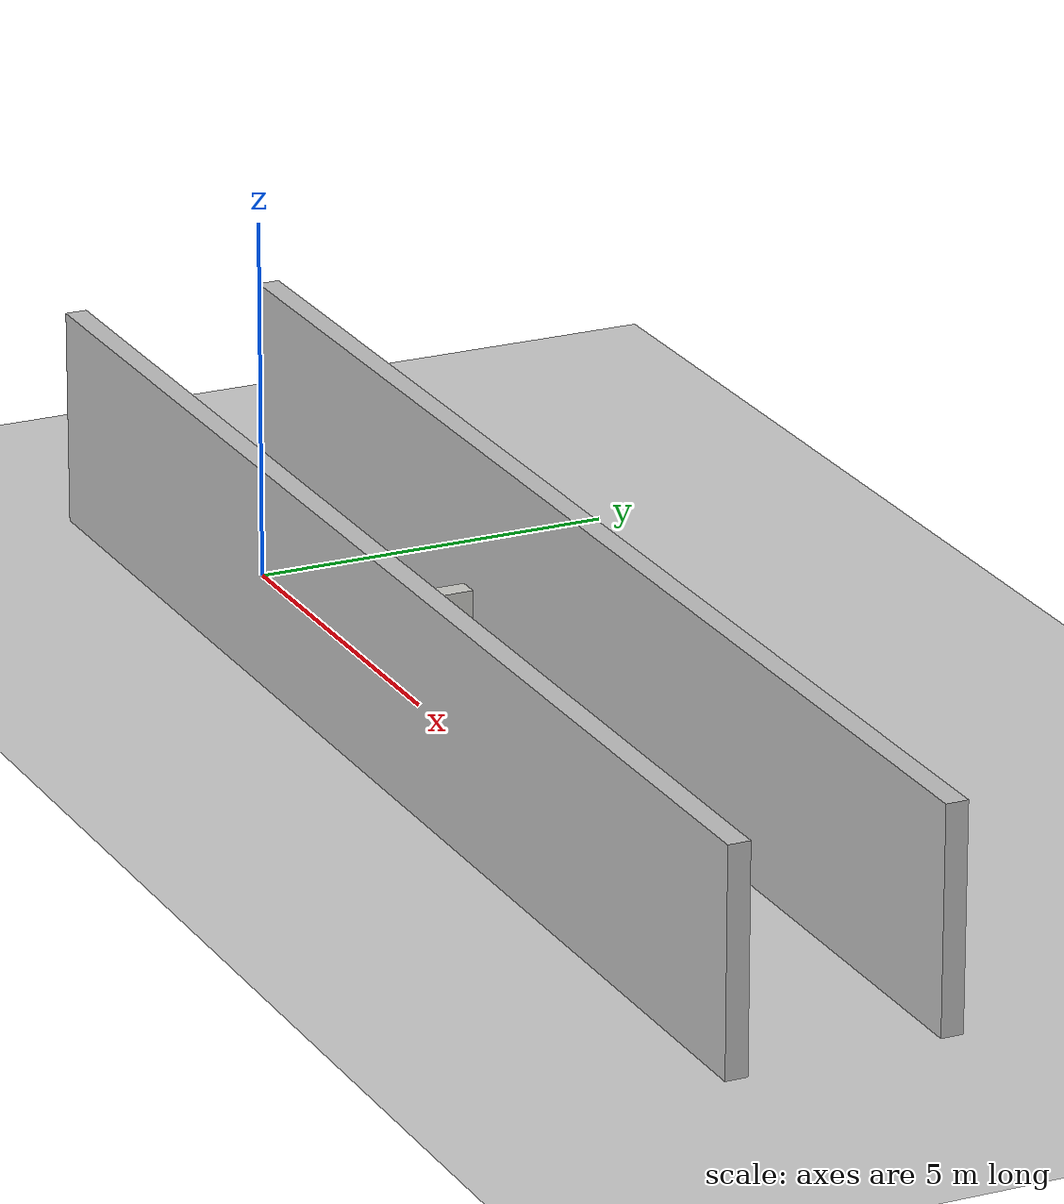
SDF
<?xml version="1.0" ?>
<sdf version="1.5">
    <world name="default">

        <physics type="ode">
            <max_step_size>0.0005</max_step_size>
            <real_time_factor>1</real_time_factor>
            <real_time_update_rate>2000</real_time_update_rate>
            <gravity>0 0 -9.81</gravity>
            <ode>
                <solver>
                    <type>quick</type>
                    <iters>50</iters>
                    <sor>1.3</sor>
                </solver>
                <constraints>
                    <cfm>0.0</cfm>
                    <erp>0.2</erp>
                    <contact_max_correcting_vel>10.0</contact_max_correcting_vel>
                    <contact_surface_layer>0.001</contact_surface_layer>
                </constraints>
            </ode>
        </physics>

        <scene>
            <sky>
                <clouds>
                    <speed>12</speed>
                </clouds>
            </sky>
        </scene>

        <include>
            <uri>model://sun</uri>
        </include>
        <include>
            <uri>model://ground_plane</uri>
        </include>

        <!-- Left wall: 20 m long, 0.3 m thick, 3 m tall; inner face at Y=-1.27 -->
        <model name="left_wall">
            <static>true</static>
            <link name="link">
                <pose>7 -1.42 1.5 0 0 0</pose>
                <collision name="collision">
                    <geometry>
                        <box><size>20 0.3 3.0</size></box>
                    </geometry>
                </collision>
                <visual name="visual">
                    <geometry>
                        <box><size>20 0.3 3.0</size></box>
                    </geometry>
                    <material>
                        <ambient>0.75 0.75 0.75 1</ambient>
                        <diffuse>0.75 0.75 0.75 1</diffuse>
                    </material>
                </visual>
            </link>
        </model>

        <!-- Right wall: 20 m long, 0.3 m thick, 3 m tall; inner face at Y=+1.27 -->
        <model name="right_wall">
            <static>true</static>
            <link name="link">
                <pose>7 1.42 1.5 0 0 0</pose>
                <collision name="collision">
                    <geometry>
                        <box><size>20 0.3 3.0</size></box>
                    </geometry>
                </collision>
                <visual name="visual">
                    <geometry>
                        <box><size>20 0.3 3.0</size></box>
                    </geometry>
                    <material>
                        <ambient>0.75 0.75 0.75 1</ambient>
                        <diffuse>0.75 0.75 0.75 1</diffuse>
                    </material>
                </visual>
            </link>
        </model>

        <model name="staircase">
            <static>true</static>
            <link name="link">
                <pose>0 0 0 0 0 0</pose>

                <!-- Step 0: x=3.14, z_center=0.09, height=0.18 -->
                <collision name="step_0">
                    <pose>3.14 -0.4318 0.09 0 0 0</pose>
                    <geometry><box><size>0.28 1.6764 0.18</size></box></geometry>
                </collision>
                <visual name="step_0">
                    <pose>3.14 -0.4318 0.09 0 0 0</pose>
                    <geometry><box><size>0.28 1.6764 0.18</size></box></geometry>
                    <material>
                        <script>
                            <uri>file://media/materials/scripts/gazebo.material</uri>
                            <name>Gazebo/CeilingTiled</name>
                        </script>
                        <ambient>1 1 1 1</ambient>
                    </material>
                </visual>

                <!-- Step 1: x=3.42, z_center=0.18, height=0.36 -->
                <collision name="step_1">
                    <pose>3.42 -0.4318 0.18 0 0 0</pose>
                    <geometry><box><size>0.28 1.6764 0.36</size></box></geometry>
                </collision>
                <visual name="step_1">
                    <pose>3.42 -0.4318 0.18 0 0 0</pose>
                    <geometry><box><size>0.28 1.6764 0.36</size></box></geometry>
                    <material>
                        <script>
                            <uri>file://media/materials/scripts/gazebo.material</uri>
                            <name>Gazebo/CeilingTiled</name>
                        </script>
                        <ambient>1 1 1 1</ambient>
                    </material>
                </visual>

                <!-- Step 2: x=3.70, z_center=0.27, height=0.54 -->
                <collision name="step_2">
                    <pose>3.70 -0.4318 0.27 0 0 0</pose>
                    <geometry><box><size>0.28 1.6764 0.54</size></box></geometry>
                </collision>
                <visual name="step_2">
                    <pose>3.70 -0.4318 0.27 0 0 0</pose>
                    <geometry><box><size>0.28 1.6764 0.54</size></box></geometry>
                    <material>
                        <script>
                            <uri>file://media/materials/scripts/gazebo.material</uri>
                            <name>Gazebo/CeilingTiled</name>
                        </script>
                        <ambient>1 1 1 1</ambient>
                    </material>
                </visual>

                <!-- Step 3: x=3.98, z_center=0.36, height=0.72 -->
                <collision name="step_3">
                    <pose>3.98 -0.4318 0.36 0 0 0</pose>
                    <geometry><box><size>0.28 1.6764 0.72</size></box></geometry>
                </collision>
                <visual name="step_3">
                    <pose>3.98 -0.4318 0.36 0 0 0</pose>
                    <geometry><box><size>0.28 1.6764 0.72</size></box></geometry>
                    <material>
                        <script>
                            <uri>file://media/materials/scripts/gazebo.material</uri>
                            <name>Gazebo/CeilingTiled</name>
                        </script>
                        <ambient>1 1 1 1</ambient>
                    </material>
                </visual>

                <!-- Step 4: x=4.26, z_center=0.45, height=0.90 -->
                <collision name="step_4">
                    <pose>4.26 -0.4318 0.45 0 0 0</pose>
                    <geometry><box><size>0.28 1.6764 0.90</size></box></geometry>
                </collision>
                <visual name="step_4">
                    <pose>4.26 -0.4318 0.45 0 0 0</pose>
                    <geometry><box><size>0.28 1.6764 0.90</size></box></geometry>
                    <material>
                        <script>
                            <uri>file://media/materials/scripts/gazebo.material</uri>
                            <name>Gazebo/CeilingTiled</name>
                        </script>
                        <ambient>1 1 1 1</ambient>
                    </material>
                </visual>

                <!-- Step 5: x=4.54, z_center=0.54, height=1.08 -->
                <collision name="step_5">
                    <pose>4.54 -0.4318 0.54 0 0 0</pose>
                    <geometry><box><size>0.28 1.6764 1.08</size></box></geometry>
                </collision>
                <visual name="step_5">
                    <pose>4.54 -0.4318 0.54 0 0 0</pose>
                    <geometry><box><size>0.28 1.6764 1.08</size></box></geometry>
                    <material>
                        <script>
                            <uri>file://media/materials/scripts/gazebo.material</uri>
                            <name>Gazebo/CeilingTiled</name>
                        </script>
                        <ambient>1 1 1 1</ambient>
                    </material>
                </visual>

                <!-- Step 6: x=4.82, z_center=0.63, height=1.26 -->
                <collision name="step_6">
                    <pose>4.82 -0.4318 0.63 0 0 0</pose>
                    <geometry><box><size>0.28 1.6764 1.26</size></box></geometry>
                </collision>
                <visual name="step_6">
                    <pose>4.82 -0.4318 0.63 0 0 0</pose>
                    <geometry><box><size>0.28 1.6764 1.26</size></box></geometry>
                    <material>
                        <script>
                            <uri>file://media/materials/scripts/gazebo.material</uri>
                            <name>Gazebo/CeilingTiled</name>
                        </script>
                        <ambient>1 1 1 1</ambient>
                    </material>
                </visual>

                <!-- Step 7: x=5.10, z_center=0.72, height=1.44 -->
                <collision name="step_7">
                    <pose>5.10 -0.4318 0.72 0 0 0</pose>
                    <geometry><box><size>0.28 1.6764 1.44</size></box></geometry>
                </collision>
                <visual name="step_7">
                    <pose>5.10 -0.4318 0.72 0 0 0</pose>
                    <geometry><box><size>0.28 1.6764 1.44</size></box></geometry>
                    <material>
                        <script>
                            <uri>file://media/materials/scripts/gazebo.material</uri>
                            <name>Gazebo/CeilingTiled</name>
                        </script>
                        <ambient>1 1 1 1</ambient>
                    </material>
                </visual>

                <!-- Step 8: x=5.38, z_center=0.81, height=1.62 -->
                <collision name="step_8">
                    <pose>5.38 -0.4318 0.81 0 0 0</pose>
                    <geometry><box><size>0.28 1.6764 1.62</size></box></geometry>
                </collision>
                <visual name="step_8">
                    <pose>5.38 -0.4318 0.81 0 0 0</pose>
                    <geometry><box><size>0.28 1.6764 1.62</size></box></geometry>
                    <material>
                        <script>
                            <uri>file://media/materials/scripts/gazebo.material</uri>
                            <name>Gazebo/CeilingTiled</name>
                        </script>
                        <ambient>1 1 1 1</ambient>
                    </material>
                </visual>

                <!-- Step 9: x=5.66, z_center=0.90, height=1.80 -->
                <collision name="step_9">
                    <pose>5.66 -0.4318 0.90 0 0 0</pose>
                    <geometry><box><size>0.28 1.6764 1.80</size></box></geometry>
                </collision>
                <visual name="step_9">
                    <pose>5.66 -0.4318 0.90 0 0 0</pose>
                    <geometry><box><size>0.28 1.6764 1.80</size></box></geometry>
                    <material>
                        <script>
                            <uri>file://media/materials/scripts/gazebo.material</uri>
                            <name>Gazebo/CeilingTiled</name>
                        </script>
                        <ambient>1 1 1 1</ambient>
                    </material>
                </visual>

            </link>
        </model>

    </world>
</sdf>
